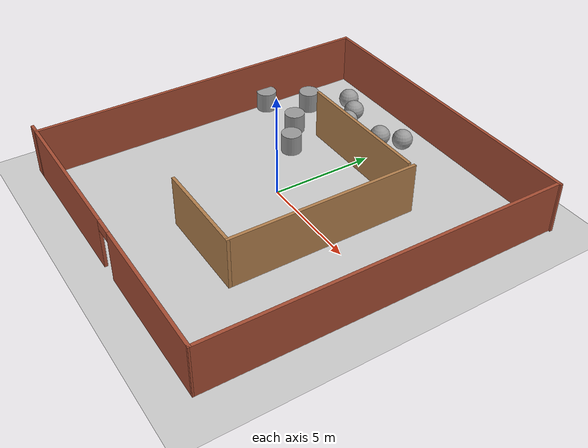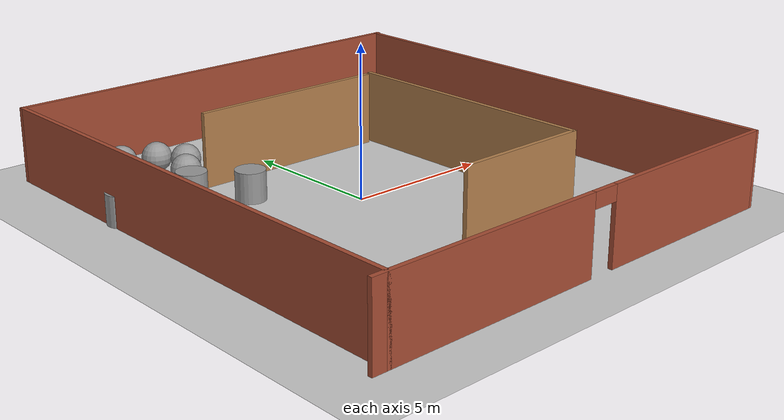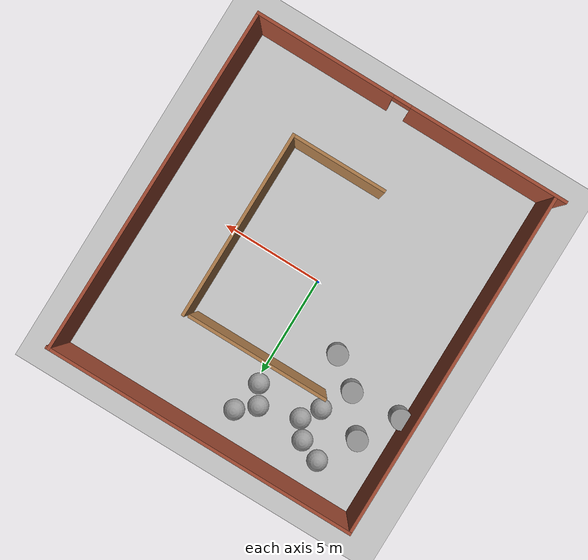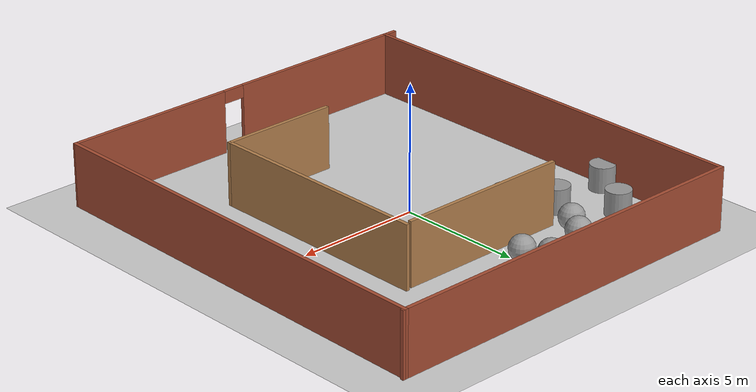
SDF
<sdf version="1.6">
 <world name="default">
  <light name="sun" type="directional">
   <pose>0 0 10 0 -0 0</pose>
   <diffuse>0.8 0.8 0.8 1</diffuse>
   <specular>0.1 0.1 0.1 1</specular>
   <attenuation>
    <range>1000</range>
    <constant>0.9</constant>
    <linear>0.01</linear>
    <quadratic>0.001</quadratic>
   </attenuation>
   <direction>-0.5 0.5 -1</direction>
  </light>
  <model name="ground_plane">
   <static>1</static>
   <link name="link">
    <collision name="collision">
     <geometry><plane><normal>0 0 1</normal><size>100 100</size></plane></geometry>
     <surface><friction><ode><mu>100</mu><mu2>50</mu2></ode></friction></surface>
    </collision>
    <visual name="visual">
     <cast_shadows>0</cast_shadows>
     <geometry><plane><normal>0 0 1</normal><size>100 100</size></plane></geometry>
     <material>
      <script><uri>file://media/materials/scripts/gazebo.material</uri><name>Gazebo/Grey</name></script>
     </material>
    </visual>
   </link>
  </model>
  <gravity>0 0 -9.8</gravity>
  <magnetic_field>6e-06 2.3e-05 -4.2e-05</magnetic_field>
  <atmosphere type="adiabatic"/>
  <physics name="default_physics" default="0" type="ode">
   <max_step_size>0.001</max_step_size>
   <real_time_factor>1</real_time_factor>
   <real_time_update_rate>1000</real_time_update_rate>
  </physics>
  <scene><ambient>0.4 0.4 0.4 1</ambient><background>0.7 0.7 0.7 1</background><shadows>1</shadows></scene>
  <spherical_coordinates>
   <surface_model>EARTH_WGS84</surface_model>
   <latitude_deg>0</latitude_deg>
   <longitude_deg>0</longitude_deg>
   <elevation>0</elevation>
   <heading_deg>0</heading_deg>
  </spherical_coordinates>
  <model name="Untitled">
   <pose>0.603431 0.0078 0 0 -0 0</pose>
   <link name="Wall_15">
    <pose>-0.106136 -8.55 0 0 -0 0</pose>
    <visual name="Wall_15_Visual_0">
     <pose>-3.91595 0 1.25 0 -0 0</pose>
     <geometry><box><size>7.91811 0.15 2.5</size></box></geometry>
     <material>
      <script><uri>file://media/materials/scripts/gazebo.material</uri><name>Gazebo/Bricks</name></script>
      <ambient>1 1 1 1</ambient>
     </material>
    </visual>
    <collision name="Wall_15_Collision_0">
     <geometry><box><size>7.91811 0.15 2.5</size></box></geometry>
     <pose>-3.91595 0 1.25 0 -0 0</pose>
    </collision>
    <visual name="Wall_15_Visual_1">
     <pose>4.40905 0 1.25 0 -0 0</pose>
     <geometry><box><size>6.93189 0.15 2.5</size></box></geometry>
     <material>
      <script><uri>file://media/materials/scripts/gazebo.material</uri><name>Gazebo/Bricks</name></script>
      <ambient>1 1 1 1</ambient>
     </material>
    </visual>
    <collision name="Wall_15_Collision_1">
     <geometry><box><size>6.93189 0.15 2.5</size></box></geometry>
     <pose>4.40905 0 1.25 0 -0 0</pose>
    </collision>
    <visual name="Wall_15_Visual_2">
     <pose>0.493108 0 2.25 0 -0 0</pose>
     <geometry><box><size>0.9 0.15 0.5</size></box></geometry>
     <material>
      <script><uri>file://media/materials/scripts/gazebo.material</uri><name>Gazebo/Bricks</name></script>
      <ambient>1 1 1 1</ambient>
     </material>
    </visual>
    <collision name="Wall_15_Collision_2">
     <geometry><box><size>0.9 0.15 0.5</size></box></geometry>
     <pose>0.493108 0 2.25 0 -0 0</pose>
    </collision>
   </link>
   <link name="Wall_16">
    <collision name="Wall_16_Collision">
     <geometry><box><size>17.2513 0.15 2.5</size></box></geometry>
     <pose>0 0 1.25 0 -0 0</pose>
    </collision>
    <visual name="Wall_16_Visual">
     <pose>0 0 1.25 0 -0 0</pose>
     <geometry><box><size>17.2513 0.15 2.5</size></box></geometry>
     <material>
      <script><uri>file://media/materials/scripts/gazebo.material</uri><name>Gazebo/Bricks</name></script>
      <ambient>1 1 1 1</ambient>
     </material>
    </visual>
    <pose>7.76462 0 0 0 -0 1.56252</pose>
   </link>
   <link name="Wall_17">
    <collision name="Wall_17_Collision">
     <geometry><box><size>15.5 0.15 2.5</size></box></geometry>
     <pose>0 0 1.25 0 -0 0</pose>
    </collision>
    <visual name="Wall_17_Visual">
     <pose>0 0 1.25 0 -0 0</pose>
     <geometry><box><size>15.5 0.15 2.5</size></box></geometry>
     <material>
      <script><uri>file://media/materials/scripts/gazebo.material</uri><name>Gazebo/Bricks</name></script>
      <ambient>1 1 1 1</ambient>
     </material>
    </visual>
    <pose>0.231135 8.55 0 0 -0 3.14159</pose>
   </link>
   <link name="Wall_21">
    <collision name="Wall_21_Collision">
     <geometry><box><size>17.25 0.15 2.5</size></box></geometry>
     <pose>0 0 1.25 0 -0 0</pose>
    </collision>
    <visual name="Wall_21_Visual">
     <pose>0 0 1.25 0 -0 0</pose>
     <geometry><box><size>17.25 0.15 2.5</size></box></geometry>
     <material>
      <script><uri>file://media/materials/scripts/gazebo.material</uri><name>Gazebo/Bricks</name></script>
      <ambient>1 1 1 1</ambient>
     </material>
    </visual>
    <pose>-7.44386 0 0 0 0 -1.5708</pose>
   </link>
   <link name="Wall_23">
    <collision name="Wall_23_Collision">
     <geometry><box><size>9.25 0.15 2.5</size></box></geometry>
     <pose>0 0 1.25 0 -0 0</pose>
    </collision>
    <visual name="Wall_23_Visual">
     <pose>0 0 1.25 0 -0 0</pose>
     <geometry><box><size>9.25 0.15 2.5</size></box></geometry>
     <material>
      <script><uri>file://media/materials/scripts/gazebo.material</uri><name>Gazebo/Wood</name></script>
      <ambient>1 1 1 1</ambient>
     </material>
    </visual>
    <pose>3.6418 -0.302151 0 0 0 -1.5708</pose>
   </link>
   <link name="Wall_24">
    <collision name="Wall_24_Collision">
     <geometry><box><size>4.75 0.15 2.5</size></box></geometry>
     <pose>0 0 1.25 0 -0 0</pose>
    </collision>
    <visual name="Wall_24_Visual">
     <pose>0 0 1.25 0 -0 0</pose>
     <geometry><box><size>4.75 0.15 2.5</size></box></geometry>
     <material>
      <script><uri>file://media/materials/scripts/gazebo.material</uri><name>Gazebo/Wood</name></script>
      <ambient>1 1 1 1</ambient>
     </material>
    </visual>
    <pose>1.3418 -4.85215 0 0 -0 3.14159</pose>
   </link>
   <link name="Wall_26">
    <collision name="Wall_26_Collision">
     <geometry><box><size>7 0.15 2.5</size></box></geometry>
     <pose>0 0 1.25 0 -0 0</pose>
    </collision>
    <visual name="Wall_26_Visual">
     <pose>0 0 1.25 0 -0 0</pose>
     <geometry><box><size>7 0.15 2.5</size></box></geometry>
     <material>
      <script><uri>file://media/materials/scripts/gazebo.material</uri><name>Gazebo/Wood</name></script>
      <ambient>1 1 1 1</ambient>
     </material>
    </visual>
    <pose>-0.066232 4.17709 0 0 -0 3.14159</pose>
   </link>
   <static>1</static>
  </model>
  <audio><device>default</device></audio>
  <model name="unit_cylinder">
   <pose>-3.96563 3.47114 0.499993 -3e-06 3e-06 0</pose>
   <link name="link">
    <inertial>
     <mass>1</mass>
     <inertia><ixx>0.145833</ixx><ixy>0</ixy><ixz>0</ixz><iyy>0.145833</iyy><iyz>0</iyz><izz>0.125</izz></inertia>
    </inertial>
    <collision name="collision">
     <geometry><cylinder><radius>0.5</radius><length>1</length></cylinder></geometry>
    </collision>
    <visual name="visual">
     <geometry><cylinder><radius>0.5</radius><length>1</length></cylinder></geometry>
     <material>
      <script><name>Gazebo/Grey</name><uri>file://media/materials/scripts/gazebo.material</uri></script>
     </material>
    </visual>
   </link>
  </model>
  <model name="unit_cylinder_0">
   <pose>-2.51592 2.3667 0.499997 -2e-06 -3e-06 0.001034</pose>
   <link name="link">
    <inertial>
     <mass>1</mass>
     <inertia><ixx>0.145833</ixx><ixy>0</ixy><ixz>0</ixz><iyy>0.145833</iyy><iyz>0</iyz><izz>0.125</izz></inertia>
    </inertial>
    <collision name="collision">
     <geometry><cylinder><radius>0.5</radius><length>1</length></cylinder></geometry>
    </collision>
    <visual name="visual">
     <geometry><cylinder><radius>0.5</radius><length>1</length></cylinder></geometry>
     <material>
      <script><name>Gazebo/Grey</name><uri>file://media/materials/scripts/gazebo.material</uri></script>
     </material>
    </visual>
   </link>
  </model>
  <model name="unit_cylinder_1">
   <pose>-6.50876 3.36594 0.499992 -3e-06 3e-06 0</pose>
   <link name="link">
    <inertial>
     <mass>1</mass>
     <inertia><ixx>0.145833</ixx><ixy>0</ixy><ixz>0</ixz><iyy>0.145833</iyy><iyz>0</iyz><izz>0.125</izz></inertia>
    </inertial>
    <collision name="collision">
     <geometry><cylinder><radius>0.5</radius><length>1</length></cylinder></geometry>
    </collision>
    <visual name="visual">
     <geometry><cylinder><radius>0.5</radius><length>1</length></cylinder></geometry>
     <material>
      <script><name>Gazebo/Grey</name><uri>file://media/materials/scripts/gazebo.material</uri></script>
     </material>
    </visual>
   </link>
  </model>
  <model name="unit_cylinder_2">
   <pose>-5.311 5.21513 0.499992 -3e-06 3e-06 0</pose>
   <link name="link">
    <inertial>
     <mass>1</mass>
     <inertia><ixx>0.145833</ixx><ixy>0</ixy><ixz>0</ixz><iyy>0.145833</iyy><iyz>0</iyz><izz>0.125</izz></inertia>
    </inertial>
    <collision name="collision">
     <geometry><cylinder><radius>0.5</radius><length>1</length></cylinder></geometry>
    </collision>
    <visual name="visual">
     <geometry><cylinder><radius>0.5</radius><length>1</length></cylinder></geometry>
     <material>
      <script><name>Gazebo/Grey</name><uri>file://media/materials/scripts/gazebo.material</uri></script>
     </material>
    </visual>
   </link>
  </model>
  <model name="unit_sphere">
   <pose>-3.1997 4.91342 0.5 0 -0 0</pose>
   <link name="link">
    <inertial>
     <mass>1</mass>
     <inertia><ixx>0.1</ixx><ixy>0</ixy><ixz>0</ixz><iyy>0.1</iyy><iyz>0</iyz><izz>0.1</izz></inertia>
    </inertial>
    <collision name="collision"><geometry><sphere><radius>0.5</radius></sphere></geometry></collision>
    <visual name="visual">
     <geometry><sphere><radius>0.5</radius></sphere></geometry>
     <material>
      <script><name>Gazebo/Grey</name><uri>file://media/materials/scripts/gazebo.material</uri></script>
     </material>
    </visual>
   </link>
  </model>
  <model name="unit_sphere_0">
   <pose>-2.61352 5.78846 0.5 0 -0 0</pose>
   <link name="link">
    <inertial>
     <mass>1</mass>
     <inertia><ixx>0.1</ixx><ixy>0</ixy><ixz>0</ixz><iyy>0.1</iyy><iyz>0</iyz><izz>0.1</izz></inertia>
    </inertial>
    <collision name="collision"><geometry><sphere><radius>0.5</radius></sphere></geometry></collision>
    <visual name="visual">
     <geometry><sphere><radius>0.5</radius></sphere></geometry>
     <material>
      <script><name>Gazebo/Grey</name><uri>file://media/materials/scripts/gazebo.material</uri></script>
     </material>
    </visual>
   </link>
  </model>
  <model name="unit_sphere_1">
   <pose>-3.21821 6.59672 0.5 0 -0 0</pose>
   <link name="link">
    <inertial>
     <mass>1</mass>
     <inertia><ixx>0.1</ixx><ixy>0</ixy><ixz>0</ixz><iyy>0.1</iyy><iyz>0</iyz><izz>0.1</izz></inertia>
    </inertial>
    <collision name="collision"><geometry><sphere><radius>0.5</radius></sphere></geometry></collision>
    <visual name="visual">
     <geometry><sphere><radius>0.5</radius></sphere></geometry>
     <material>
      <script><name>Gazebo/Grey</name><uri>file://media/materials/scripts/gazebo.material</uri></script>
     </material>
    </visual>
   </link>
  </model>
  <model name="unit_sphere_2">
   <pose>-4.28628 7.0395 0.5 0 -0 0</pose>
   <link name="link">
    <inertial>
     <mass>1</mass>
     <inertia><ixx>0.1</ixx><ixy>0</ixy><ixz>0</ixz><iyy>0.1</iyy><iyz>0</iyz><izz>0.1</izz></inertia>
    </inertial>
    <collision name="collision"><geometry><sphere><radius>0.5</radius></sphere></geometry></collision>
    <visual name="visual">
     <geometry><sphere><radius>0.5</radius></sphere></geometry>
     <material>
      <script><name>Gazebo/Grey</name><uri>file://media/materials/scripts/gazebo.material</uri></script>
     </material>
    </visual>
   </link>
  </model>
  <model name="unit_sphere_3">
   <pose>-0.662296 6.31715 0.5 0 -0 0</pose>
   <link name="link">
    <inertial>
     <mass>1</mass>
     <inertia><ixx>0.1</ixx><ixy>0</ixy><ixz>0</ixz><iyy>0.1</iyy><iyz>0</iyz><izz>0.1</izz></inertia>
    </inertial>
    <collision name="collision"><geometry><sphere><radius>0.5</radius></sphere></geometry></collision>
    <visual name="visual">
     <geometry><sphere><radius>0.5</radius></sphere></geometry>
     <material>
      <script><name>Gazebo/Grey</name><uri>file://media/materials/scripts/gazebo.material</uri></script>
     </material>
    </visual>
   </link>
  </model>
  <model name="unit_sphere_4">
   <pose>0.192531 7.03866 0.5 0 -0 0</pose>
   <link name="link">
    <inertial>
     <mass>1</mass>
     <inertia><ixx>0.1</ixx><ixy>0</ixy><ixz>0</ixz><iyy>0.1</iyy><iyz>0</iyz><izz>0.1</izz></inertia>
    </inertial>
    <collision name="collision"><geometry><sphere><radius>0.5</radius></sphere></geometry></collision>
    <visual name="visual">
     <geometry><sphere><radius>0.5</radius></sphere></geometry>
     <material>
      <script><name>Gazebo/Grey</name><uri>file://media/materials/scripts/gazebo.material</uri></script>
     </material>
    </visual>
   </link>
  </model>
  <model name="unit_sphere_5">
   <pose>-0.14782 5.42195 0.5 0 -0 0</pose>
   <link name="link">
    <inertial>
     <mass>1</mass>
     <inertia><ixx>0.1</ixx><ixy>0</ixy><ixz>0</ixz><iyy>0.1</iyy><iyz>0</iyz><izz>0.1</izz></inertia>
    </inertial>
    <collision name="collision"><geometry><sphere><radius>0.5</radius></sphere></geometry></collision>
    <visual name="visual">
     <geometry><sphere><radius>0.5</radius></sphere></geometry>
     <material>
      <script><name>Gazebo/Grey</name><uri>file://media/materials/scripts/gazebo.material</uri></script>
     </material>
    </visual>
   </link>
  </model>
 </world>
</sdf>
